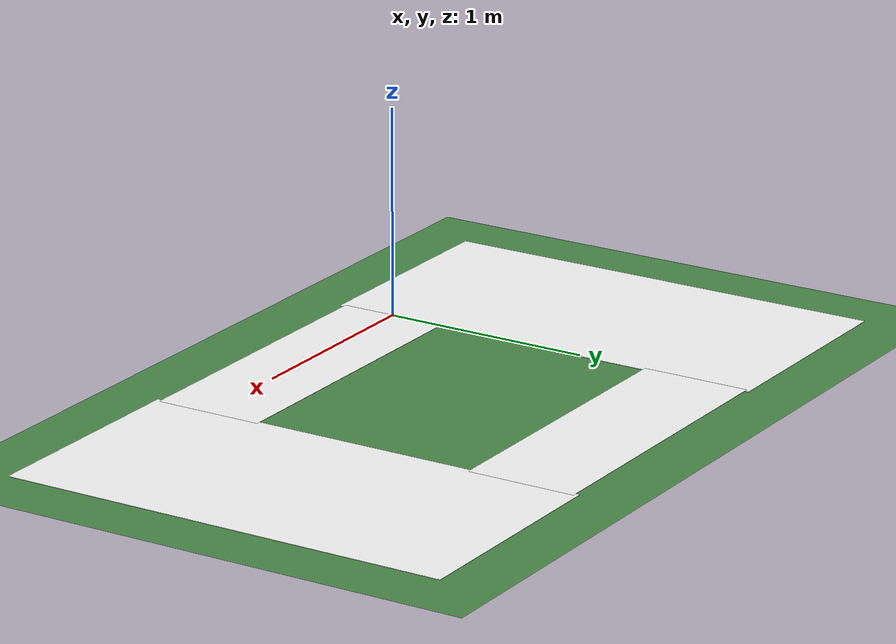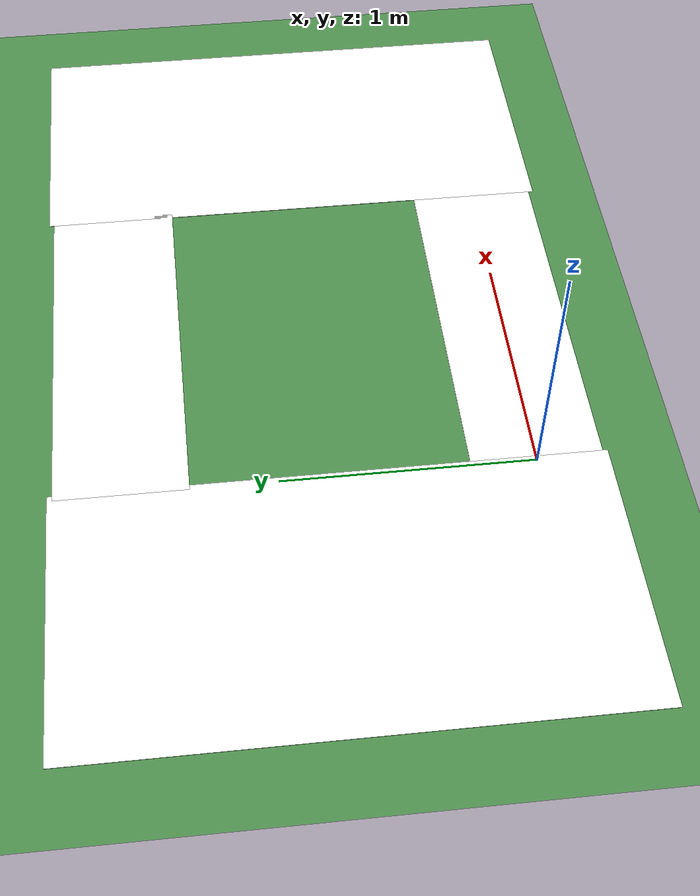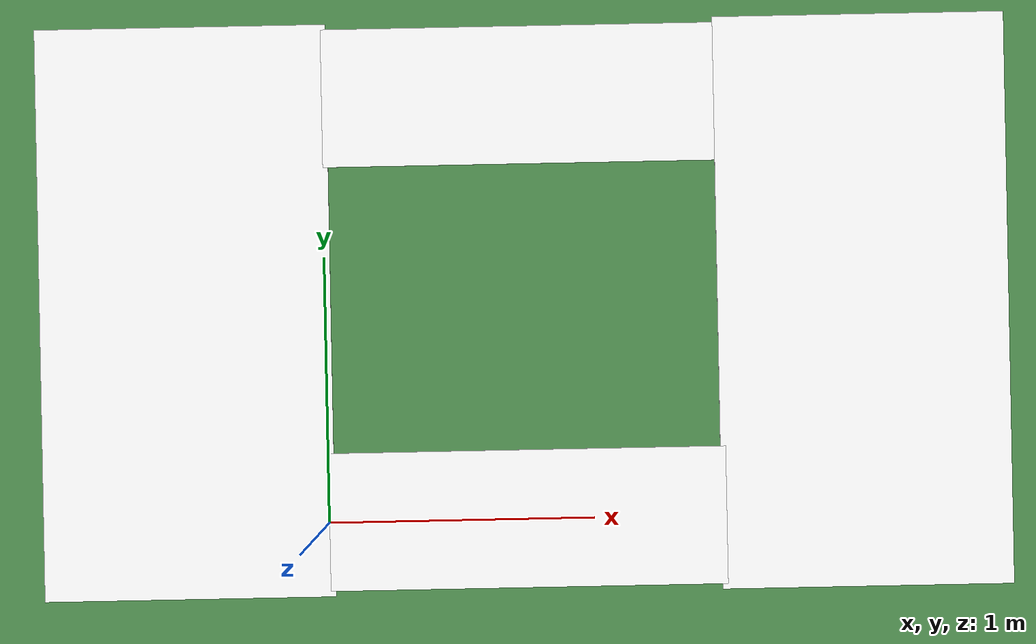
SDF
<?xml version="1.0" ?>
<sdf version='1.8'>
  <world name='lane_following_oval'>
    <physics name='1ms' type='ignored'>
      <max_step_size>0.001</max_step_size>
      <real_time_factor>1</real_time_factor>
    </physics>
    <plugin
      filename="gz-sim-physics-system"
      name="gz::sim::systems::Physics">
    </plugin>
    <plugin
      filename="gz-sim-user-commands-system"
      name="gz::sim::systems::UserCommands">
    </plugin>
    <plugin
      filename="gz-sim-scene-broadcaster-system"
      name="gz::sim::systems::SceneBroadcaster">
    </plugin>
    <plugin
      filename="gz-sim-sensors-system"
      name="gz::sim::systems::Sensors">
      <render_engine>ogre2</render_engine>
    </plugin>
    <plugin
      filename="gz-sim-imu-system"
      name="gz::sim::systems::Imu">
    </plugin>
    <model name='ground_plane'>
      <static>true</static>
      <link name='link'>
        <collision name='collision'>
          <geometry>
            <plane>
              <normal>0 0 1</normal>
              <size>50 50</size>
            </plane>
          </geometry>
          <surface>
            <friction><ode/></friction>
            <bounce/>
            <contact/>
          </surface>
        </collision>
        <visual name='visual'>
          <geometry>
            <plane>
              <normal>0 0 1</normal>
              <size>50 50</size>
            </plane>
          </geometry>
          <material>
            <ambient>0.3 0.55 0.3 1</ambient>
            <diffuse>0.3 0.55 0.3 1</diffuse>
            <specular>0.05 0.05 0.05 1</specular>
          </material>
        </visual>
      </link>
    </model>
    <model name='tile_00_straight'>
      <static>true</static>
      <pose>0.7500 0.0000 0.0010  0 0 0.000000</pose>
      <link name='link'>
        <visual name='visual'>
          <geometry>
            <box>
              <size>1.5000 0.5200 0.0020</size>
            </box>
          </geometry>
          <material>
            <diffuse>1 1 1 1</diffuse>
            <specular>0.05 0.05 0.05 1</specular>
            <pbr>
              <metal>
                <albedo_map>../materials/road_assets/road_textures/road_two_lane_same_direction_0p52m_x_1p5m.png</albedo_map>
                <roughness>0.9</roughness>
                <metalness>0.0</metalness>
              </metal>
            </pbr>
          </material>
        </visual>
      </link>
    </model>
    <model name='tile_01_curve'>
      <static>true</static>
      <pose>2.0300 0.8000 0.0010  0 0 1.570796</pose>
      <link name='link'>
        <visual name='visual'>
          <geometry>
            <box>
              <size>2.1600 1.1000 0.0020</size>
            </box>
          </geometry>
          <material>
            <diffuse>1 1 1 1</diffuse>
            <specular>0.05 0.05 0.05 1</specular>
            <pbr>
              <metal>
                <albedo_map>../materials/road_assets/road_curves/curve_R080cm_A180deg.png</albedo_map>
                <roughness>0.9</roughness>
                <metalness>0.0</metalness>
              </metal>
            </pbr>
          </material>
        </visual>
      </link>
    </model>
    <model name='tile_02_straight'>
      <static>true</static>
      <pose>0.7500 1.6000 0.0010  0 0 3.141593</pose>
      <link name='link'>
        <visual name='visual'>
          <geometry>
            <box>
              <size>1.5000 0.5200 0.0020</size>
            </box>
          </geometry>
          <material>
            <diffuse>1 1 1 1</diffuse>
            <specular>0.05 0.05 0.05 1</specular>
            <pbr>
              <metal>
                <albedo_map>../materials/road_assets/road_textures/road_two_lane_same_direction_0p52m_x_1p5m.png</albedo_map>
                <roughness>0.9</roughness>
                <metalness>0.0</metalness>
              </metal>
            </pbr>
          </material>
        </visual>
      </link>
    </model>
    <model name='tile_03_curve'>
      <static>true</static>
      <pose>-0.5300 0.8000 0.0010  0 0 -1.570796</pose>
      <link name='link'>
        <visual name='visual'>
          <geometry>
            <box>
              <size>2.1600 1.1000 0.0020</size>
            </box>
          </geometry>
          <material>
            <diffuse>1 1 1 1</diffuse>
            <specular>0.05 0.05 0.05 1</specular>
            <pbr>
              <metal>
                <albedo_map>../materials/road_assets/road_curves/curve_R080cm_A180deg.png</albedo_map>
                <roughness>0.9</roughness>
                <metalness>0.0</metalness>
              </metal>
            </pbr>
          </material>
        </visual>
      </link>
    </model>
    <light name='sun' type='directional'>
      <pose>0 0 10 0 0 0</pose>
      <cast_shadows>false</cast_shadows>
      <intensity>1</intensity>
      <direction>-0.4 0.1 -0.9</direction>
      <diffuse>0.9 0.9 0.9 1</diffuse>
      <specular>0.2 0.2 0.2 1</specular>
      <attenuation>
        <range>1000</range>
        <linear>0.01</linear>
        <constant>0.9</constant>
        <quadratic>0.001</quadratic>
      </attenuation>
    </light>
  </world>
</sdf>
